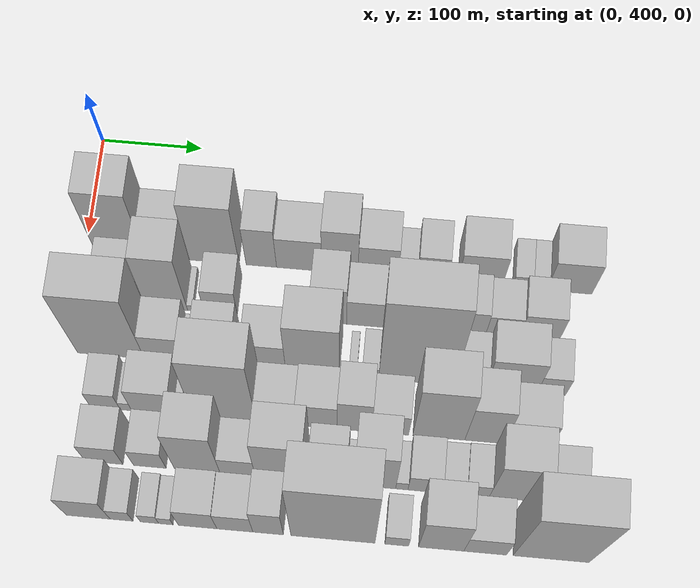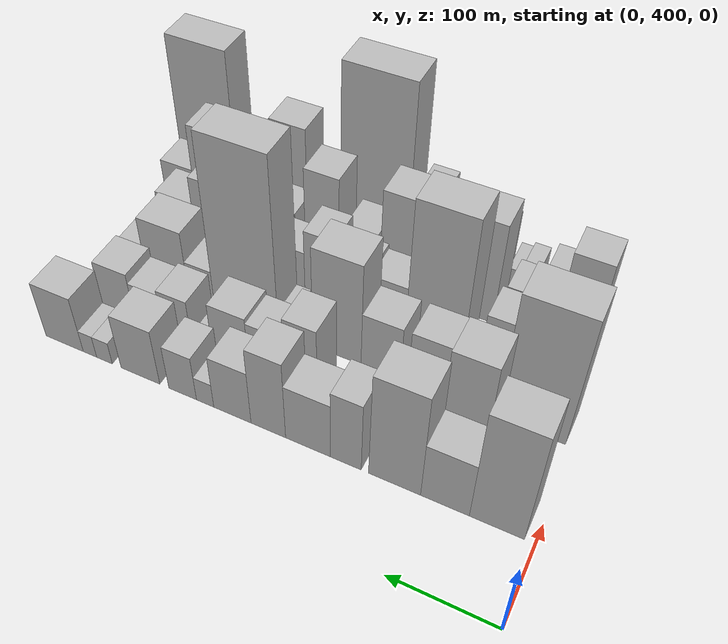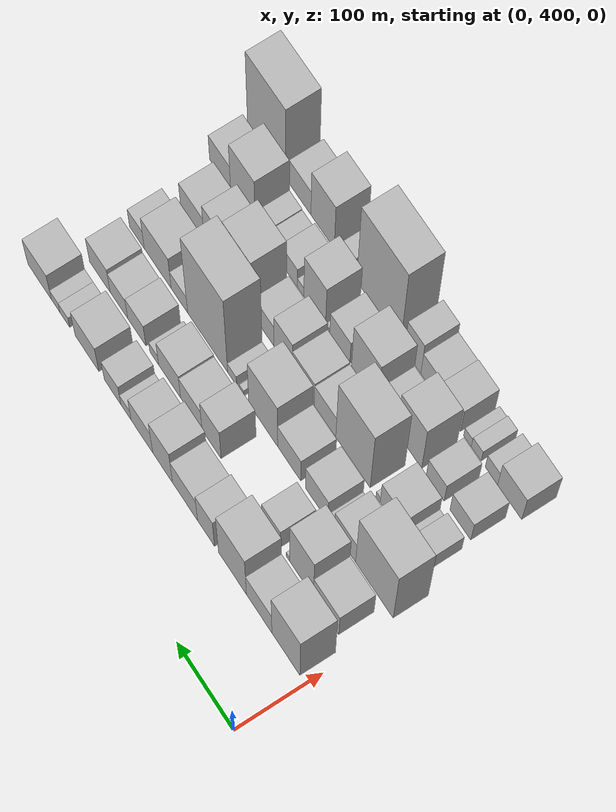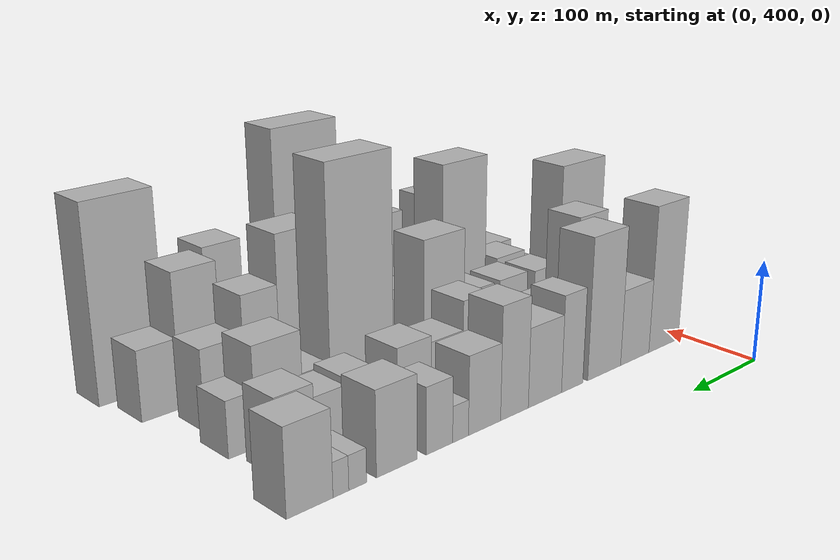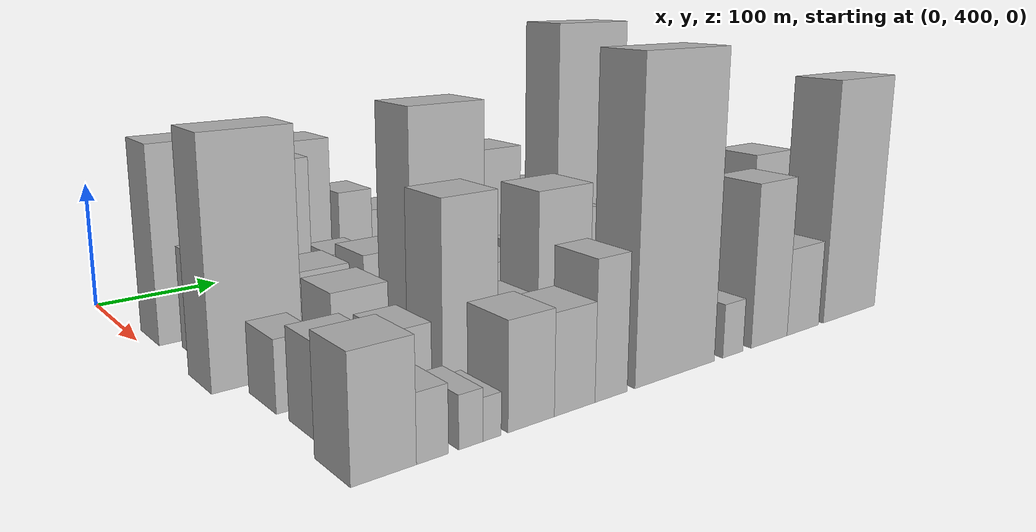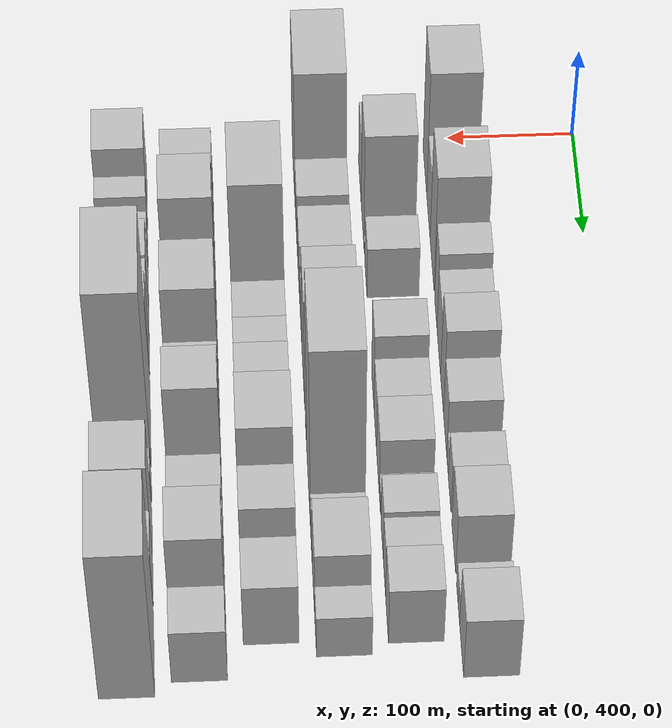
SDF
<sdf version="1.6">
 <world name="default">
  <model name="building_39">
   <static>1</static>
   <pose>100.0000 434.0452 0 0.000000 0.000000 0.000000</pose>
   <link name="link">
    <pose>0 0 73.50 0 0 0</pose>
    <collision name="collision"><geometry><box><size>40.0000 48.5534 147.0000</size></box></geometry></collision>
    <visual name="visual">
     <cast_shadows>0</cast_shadows>
     <geometry><box><size>40.0000 48.5534 147.0000</size></box></geometry>
     <material>
      <script>
       <uri>model://HANNAS_wall/materials/scripts</uri>
       <uri>model://HANNAS_wall/materials/textures</uri>
       <name>vrc/HANNAS_wall</name>
      </script>
     </material>
    </visual>
   </link>
  </model>
  <model name="building_40">
   <static>1</static>
   <pose>100.0000 480.4827 0 0.000000 0.000000 0.000000</pose>
   <link name="link">
    <pose>0 0 37.50 0 0 0</pose>
    <collision name="collision"><geometry><box><size>40.0000 44.3215 75.0000</size></box></geometry></collision>
    <visual name="visual">
     <cast_shadows>0</cast_shadows>
     <geometry><box><size>40.0000 44.3215 75.0000</size></box></geometry>
     <material>
      <script>
       <uri>model://HANNAS_wall/materials/scripts</uri>
       <uri>model://HANNAS_wall/materials/textures</uri>
       <name>vrc/HANNAS_wall</name>
      </script>
     </material>
    </visual>
   </link>
  </model>
  <model name="building_41">
   <static>1</static>
   <pose>100.0000 527.0960 0 0.000000 0.000000 0.000000</pose>
   <link name="link">
    <pose>0 0 69.00 0 0 0</pose>
    <collision name="collision"><geometry><box><size>40.0000 48.9052 138.0000</size></box></geometry></collision>
    <visual name="visual">
     <cast_shadows>0</cast_shadows>
     <geometry><box><size>40.0000 48.9052 138.0000</size></box></geometry>
     <material>
      <script>
       <uri>model://HANNAS_wall/materials/scripts</uri>
       <uri>model://HANNAS_wall/materials/textures</uri>
       <name>vrc/HANNAS_wall</name>
      </script>
     </material>
    </visual>
   </link>
  </model>
  <model name="building_42">
   <static>1</static>
   <pose>100.0000 573.4943 0 0.000000 0.000000 0.000000</pose>
   <link name="link">
    <pose>0 0 46.50 0 0 0</pose>
    <collision name="collision"><geometry><box><size>40.0000 29.8914 93.0000</size></box></geometry></collision>
    <visual name="visual">
     <cast_shadows>0</cast_shadows>
     <geometry><box><size>40.0000 29.8914 93.0000</size></box></geometry>
     <material>
      <script>
       <uri>model://HANNAS_wall/materials/scripts</uri>
       <uri>model://HANNAS_wall/materials/textures</uri>
       <name>vrc/HANNAS_wall</name>
      </script>
     </material>
    </visual>
   </link>
  </model>
  <model name="building_43">
   <static>1</static>
   <pose>100.0000 610.7016 0 0.000000 0.000000 0.000000</pose>
   <link name="link">
    <pose>0 0 37.50 0 0 0</pose>
    <collision name="collision"><geometry><box><size>40.0000 44.5233 75.0000</size></box></geometry></collision>
    <visual name="visual">
     <cast_shadows>0</cast_shadows>
     <geometry><box><size>40.0000 44.5233 75.0000</size></box></geometry>
     <material>
      <script>
       <uri>model://HANNAS_wall/materials/scripts</uri>
       <uri>model://HANNAS_wall/materials/textures</uri>
       <name>vrc/HANNAS_wall</name>
      </script>
     </material>
    </visual>
   </link>
  </model>
  <model name="building_44">
   <static>1</static>
   <pose>100.0000 650.6579 0 0.000000 0.000000 0.000000</pose>
   <link name="link">
    <pose>0 0 52.50 0 0 0</pose>
    <collision name="collision"><geometry><box><size>40.0000 35.3893 105.0000</size></box></geometry></collision>
    <visual name="visual">
     <cast_shadows>0</cast_shadows>
     <geometry><box><size>40.0000 35.3893 105.0000</size></box></geometry>
     <material>
      <script>
       <uri>model://HANNAS_wall/materials/scripts</uri>
       <uri>model://HANNAS_wall/materials/textures</uri>
       <name>vrc/HANNAS_wall</name>
      </script>
     </material>
    </visual>
   </link>
  </model>
  <model name="building_45">
   <static>1</static>
   <pose>100.0000 687.8683 0 0.000000 0.000000 0.000000</pose>
   <link name="link">
    <pose>0 0 36.00 0 0 0</pose>
    <collision name="collision"><geometry><box><size>40.0000 39.0315 72.0000</size></box></geometry></collision>
    <visual name="visual">
     <cast_shadows>0</cast_shadows>
     <geometry><box><size>40.0000 39.0315 72.0000</size></box></geometry>
     <material>
      <script>
       <uri>model://HANNAS_wall/materials/scripts</uri>
       <uri>model://HANNAS_wall/materials/textures</uri>
       <name>vrc/HANNAS_wall</name>
      </script>
     </material>
    </visual>
   </link>
  </model>
  <model name="building_46">
   <static>1</static>
   <pose>100.0000 716.6327 0 0.000000 0.000000 0.000000</pose>
   <link name="link">
    <pose>0 0 16.50 0 0 0</pose>
    <collision name="collision"><geometry><box><size>40.0000 18.4973 33.0000</size></box></geometry></collision>
    <visual name="visual">
     <cast_shadows>0</cast_shadows>
     <geometry><box><size>40.0000 18.4973 33.0000</size></box></geometry>
     <material>
      <script>
       <uri>model://HANNAS_wall/materials/scripts</uri>
       <uri>model://HANNAS_wall/materials/textures</uri>
       <name>vrc/HANNAS_wall</name>
      </script>
     </material>
    </visual>
   </link>
  </model>
  <model name="building_47">
   <static>1</static>
   <pose>100.0000 740.8823 0 0.000000 0.000000 0.000000</pose>
   <link name="link">
    <pose>0 0 30.00 0 0 0</pose>
    <collision name="collision"><geometry><box><size>40.0000 30.0018 60.0000</size></box></geometry></collision>
    <visual name="visual">
     <cast_shadows>0</cast_shadows>
     <geometry><box><size>40.0000 30.0018 60.0000</size></box></geometry>
     <material>
      <script>
       <uri>model://HANNAS_wall/materials/scripts</uri>
       <uri>model://HANNAS_wall/materials/textures</uri>
       <name>vrc/HANNAS_wall</name>
      </script>
     </material>
    </visual>
   </link>
  </model>
  <model name="building_48">
   <static>1</static>
   <pose>100.0000 787.5437 0 0.000000 0.000000 0.000000</pose>
   <link name="link">
    <pose>0 0 37.50 0 0 0</pose>
    <collision name="collision"><geometry><box><size>40.0000 43.3210 75.0000</size></box></geometry></collision>
    <visual name="visual">
     <cast_shadows>0</cast_shadows>
     <geometry><box><size>40.0000 43.3210 75.0000</size></box></geometry>
     <material>
      <script>
       <uri>model://HANNAS_wall/materials/scripts</uri>
       <uri>model://HANNAS_wall/materials/textures</uri>
       <name>vrc/HANNAS_wall</name>
      </script>
     </material>
    </visual>
   </link>
  </model>
  <model name="building_49">
   <static>1</static>
   <pose>100.0000 828.1777 0 0.000000 0.000000 0.000000</pose>
   <link name="link">
    <pose>0 0 15.00 0 0 0</pose>
    <collision name="collision"><geometry><box><size>40.0000 17.9471 30.0000</size></box></geometry></collision>
    <visual name="visual">
     <cast_shadows>0</cast_shadows>
     <geometry><box><size>40.0000 17.9471 30.0000</size></box></geometry>
     <material>
      <script>
       <uri>model://HANNAS_wall/materials/scripts</uri>
       <uri>model://HANNAS_wall/materials/textures</uri>
       <name>vrc/HANNAS_wall</name>
      </script>
     </material>
    </visual>
   </link>
  </model>
  <model name="building_50">
   <static>1</static>
   <pose>100.0000 844.9047 0 0.000000 0.000000 0.000000</pose>
   <link name="link">
    <pose>0 0 15.00 0 0 0</pose>
    <collision name="collision"><geometry><box><size>40.0000 15.5069 30.0000</size></box></geometry></collision>
    <visual name="visual">
     <cast_shadows>0</cast_shadows>
     <geometry><box><size>40.0000 15.5069 30.0000</size></box></geometry>
     <material>
      <script>
       <uri>model://HANNAS_wall/materials/scripts</uri>
       <uri>model://HANNAS_wall/materials/textures</uri>
       <name>vrc/HANNAS_wall</name>
      </script>
     </material>
    </visual>
   </link>
  </model>
  <model name="building_51">
   <static>1</static>
   <pose>100.0000 874.6239 0 0.000000 0.000000 0.000000</pose>
   <link name="link">
    <pose>0 0 37.50 0 0 0</pose>
    <collision name="collision"><geometry><box><size>40.0000 43.9314 75.0000</size></box></geometry></collision>
    <visual name="visual">
     <cast_shadows>0</cast_shadows>
     <geometry><box><size>40.0000 43.9314 75.0000</size></box></geometry>
     <material>
      <script>
       <uri>model://HANNAS_wall/materials/scripts</uri>
       <uri>model://HANNAS_wall/materials/textures</uri>
       <name>vrc/HANNAS_wall</name>
      </script>
     </material>
    </visual>
   </link>
  </model>
  <model name="building_87">
   <static>1</static>
   <pose>152.0000 444.2324 0 0.000000 0.000000 0.000000</pose>
   <link name="link">
    <pose>0 0 37.50 0 0 0</pose>
    <collision name="collision"><geometry><box><size>40.0000 43.6338 75.0000</size></box></geometry></collision>
    <visual name="visual">
     <cast_shadows>0</cast_shadows>
     <geometry><box><size>40.0000 43.6338 75.0000</size></box></geometry>
     <material>
      <script>
       <uri>model://HANNAS_wall/materials/scripts</uri>
       <uri>model://HANNAS_wall/materials/textures</uri>
       <name>vrc/HANNAS_wall</name>
      </script>
     </material>
    </visual>
   </link>
  </model>
  <model name="building_88">
   <static>1</static>
   <pose>152.0000 486.6848 0 0.000000 0.000000 0.000000</pose>
   <link name="link">
    <pose>0 0 67.50 0 0 0</pose>
    <collision name="collision"><geometry><box><size>40.0000 41.2710 135.0000</size></box></geometry></collision>
    <visual name="visual">
     <cast_shadows>0</cast_shadows>
     <geometry><box><size>40.0000 41.2710 135.0000</size></box></geometry>
     <material>
      <script>
       <uri>model://HANNAS_wall/materials/scripts</uri>
       <uri>model://HANNAS_wall/materials/textures</uri>
       <name>vrc/HANNAS_wall</name>
      </script>
     </material>
    </visual>
   </link>
  </model>
  <model name="building_89">
   <static>1</static>
   <pose>152.0000 510.3654 0 0.000000 0.000000 0.000000</pose>
   <link name="link">
    <pose>0 0 7.50 0 0 0</pose>
    <collision name="collision"><geometry><box><size>40.0000 6.0902 15.0000</size></box></geometry></collision>
    <visual name="visual">
     <cast_shadows>0</cast_shadows>
     <geometry><box><size>40.0000 6.0902 15.0000</size></box></geometry>
     <material>
      <script>
       <uri>model://HANNAS_wall/materials/scripts</uri>
       <uri>model://HANNAS_wall/materials/textures</uri>
       <name>vrc/HANNAS_wall</name>
      </script>
     </material>
    </visual>
   </link>
  </model>
  <model name="building_90">
   <static>1</static>
   <pose>152.0000 539.6230 0 0.000000 0.000000 0.000000</pose>
   <link name="link">
    <pose>0 0 30.00 0 0 0</pose>
    <collision name="collision"><geometry><box><size>40.0000 32.4252 60.0000</size></box></geometry></collision>
    <visual name="visual">
     <cast_shadows>0</cast_shadows>
     <geometry><box><size>40.0000 32.4252 60.0000</size></box></geometry>
     <material>
      <script>
       <uri>model://HANNAS_wall/materials/scripts</uri>
       <uri>model://HANNAS_wall/materials/textures</uri>
       <name>vrc/HANNAS_wall</name>
      </script>
     </material>
    </visual>
   </link>
  </model>
  <model name="building_91">
   <static>1</static>
   <pose>152.0000 644.8274 0 0.000000 0.000000 0.000000</pose>
   <link name="link">
    <pose>0 0 46.50 0 0 0</pose>
    <collision name="collision"><geometry><box><size>40.0000 33.9945 93.0000</size></box></geometry></collision>
    <visual name="visual">
     <cast_shadows>0</cast_shadows>
     <geometry><box><size>40.0000 33.9945 93.0000</size></box></geometry>
     <material>
      <script>
       <uri>model://HANNAS_wall/materials/scripts</uri>
       <uri>model://HANNAS_wall/materials/textures</uri>
       <name>vrc/HANNAS_wall</name>
      </script>
     </material>
    </visual>
   </link>
  </model>
  <model name="building_92">
   <static>1</static>
   <pose>152.0000 680.9987 0 0.000000 0.000000 0.000000</pose>
   <link name="link">
    <pose>0 0 33.00 0 0 0</pose>
    <collision name="collision"><geometry><box><size>40.0000 38.3481 66.0000</size></box></geometry></collision>
    <visual name="visual">
     <cast_shadows>0</cast_shadows>
     <geometry><box><size>40.0000 38.3481 66.0000</size></box></geometry>
     <material>
      <script>
       <uri>model://HANNAS_wall/materials/scripts</uri>
       <uri>model://HANNAS_wall/materials/textures</uri>
       <name>vrc/HANNAS_wall</name>
      </script>
     </material>
    </visual>
   </link>
  </model>
  <model name="building_93">
   <static>1</static>
   <pose>152.0000 719.9692 0 0.000000 0.000000 0.000000</pose>
   <link name="link">
    <pose>0 0 36.00 0 0 0</pose>
    <collision name="collision"><geometry><box><size>40.0000 39.5930 72.0000</size></box></geometry></collision>
    <visual name="visual">
     <cast_shadows>0</cast_shadows>
     <geometry><box><size>40.0000 39.5930 72.0000</size></box></geometry>
     <material>
      <script>
       <uri>model://HANNAS_wall/materials/scripts</uri>
       <uri>model://HANNAS_wall/materials/textures</uri>
       <name>vrc/HANNAS_wall</name>
      </script>
     </material>
    </visual>
   </link>
  </model>
  <model name="building_94">
   <static>1</static>
   <pose>152.0000 747.7922 0 0.000000 0.000000 0.000000</pose>
   <link name="link">
    <pose>0 0 15.00 0 0 0</pose>
    <collision name="collision"><geometry><box><size>40.0000 16.0530 30.0000</size></box></geometry></collision>
    <visual name="visual">
     <cast_shadows>0</cast_shadows>
     <geometry><box><size>40.0000 16.0530 30.0000</size></box></geometry>
     <material>
      <script>
       <uri>model://HANNAS_wall/materials/scripts</uri>
       <uri>model://HANNAS_wall/materials/textures</uri>
       <name>vrc/HANNAS_wall</name>
      </script>
     </material>
    </visual>
   </link>
  </model>
  <model name="building_95">
   <static>1</static>
   <pose>152.0000 779.2537 0 0.000000 0.000000 0.000000</pose>
   <link name="link">
    <pose>0 0 31.50 0 0 0</pose>
    <collision name="collision"><geometry><box><size>40.0000 32.8700 63.0000</size></box></geometry></collision>
    <visual name="visual">
     <cast_shadows>0</cast_shadows>
     <geometry><box><size>40.0000 32.8700 63.0000</size></box></geometry>
     <material>
      <script>
       <uri>model://HANNAS_wall/materials/scripts</uri>
       <uri>model://HANNAS_wall/materials/textures</uri>
       <name>vrc/HANNAS_wall</name>
      </script>
     </material>
    </visual>
   </link>
  </model>
  <model name="building_96">
   <static>1</static>
   <pose>152.0000 811.8018 0 0.000000 0.000000 0.000000</pose>
   <link name="link">
    <pose>0 0 28.50 0 0 0</pose>
    <collision name="collision"><geometry><box><size>40.0000 32.2261 57.0000</size></box></geometry></collision>
    <visual name="visual">
     <cast_shadows>0</cast_shadows>
     <geometry><box><size>40.0000 32.2261 57.0000</size></box></geometry>
     <material>
      <script>
       <uri>model://HANNAS_wall/materials/scripts</uri>
       <uri>model://HANNAS_wall/materials/textures</uri>
       <name>vrc/HANNAS_wall</name>
      </script>
     </material>
    </visual>
   </link>
  </model>
  <model name="building_97">
   <static>1</static>
   <pose>152.0000 846.9671 0 0.000000 0.000000 0.000000</pose>
   <link name="link">
    <pose>0 0 34.50 0 0 0</pose>
    <collision name="collision"><geometry><box><size>40.0000 38.1047 69.0000</size></box></geometry></collision>
    <visual name="visual">
     <cast_shadows>0</cast_shadows>
     <geometry><box><size>40.0000 38.1047 69.0000</size></box></geometry>
     <material>
      <script>
       <uri>model://HANNAS_wall/materials/scripts</uri>
       <uri>model://HANNAS_wall/materials/textures</uri>
       <name>vrc/HANNAS_wall</name>
      </script>
     </material>
    </visual>
   </link>
  </model>
  <model name="building_135">
   <static>1</static>
   <pose>204.0000 439.9268 0 0.000000 0.000000 0.000000</pose>
   <link name="link">
    <pose>0 0 84.00 0 0 0</pose>
    <collision name="collision"><geometry><box><size>40.0000 64.5803 168.0000</size></box></geometry></collision>
    <visual name="visual">
     <cast_shadows>0</cast_shadows>
     <geometry><box><size>40.0000 64.5803 168.0000</size></box></geometry>
     <material>
      <script>
       <uri>model://HANNAS_wall/materials/scripts</uri>
       <uri>model://HANNAS_wall/materials/textures</uri>
       <name>vrc/HANNAS_wall</name>
      </script>
     </material>
    </visual>
   </link>
  </model>
  <model name="building_136">
   <static>1</static>
   <pose>204.0000 490.7470 0 0.000000 0.000000 0.000000</pose>
   <link name="link">
    <pose>0 0 34.50 0 0 0</pose>
    <collision name="collision"><geometry><box><size>40.0000 37.0600 69.0000</size></box></geometry></collision>
    <visual name="visual">
     <cast_shadows>0</cast_shadows>
     <geometry><box><size>40.0000 37.0600 69.0000</size></box></geometry>
     <material>
      <script>
       <uri>model://HANNAS_wall/materials/scripts</uri>
       <uri>model://HANNAS_wall/materials/textures</uri>
       <name>vrc/HANNAS_wall</name>
      </script>
     </material>
    </visual>
   </link>
  </model>
  <model name="building_137">
   <static>1</static>
   <pose>204.0000 514.8238 0 0.000000 0.000000 0.000000</pose>
   <link name="link">
    <pose>0 0 13.50 0 0 0</pose>
    <collision name="collision"><geometry><box><size>40.0000 11.0937 27.0000</size></box></geometry></collision>
    <visual name="visual">
     <cast_shadows>0</cast_shadows>
     <geometry><box><size>40.0000 11.0937 27.0000</size></box></geometry>
     <material>
      <script>
       <uri>model://HANNAS_wall/materials/scripts</uri>
       <uri>model://HANNAS_wall/materials/textures</uri>
       <name>vrc/HANNAS_wall</name>
      </script>
     </material>
    </visual>
   </link>
  </model>
  <model name="building_138">
   <static>1</static>
   <pose>204.0000 539.9787 0 0.000000 0.000000 0.000000</pose>
   <link name="link">
    <pose>0 0 36.00 0 0 0</pose>
    <collision name="collision"><geometry><box><size>40.0000 39.2160 72.0000</size></box></geometry></collision>
    <visual name="visual">
     <cast_shadows>0</cast_shadows>
     <geometry><box><size>40.0000 39.2160 72.0000</size></box></geometry>
     <material>
      <script>
       <uri>model://HANNAS_wall/materials/scripts</uri>
       <uri>model://HANNAS_wall/materials/textures</uri>
       <name>vrc/HANNAS_wall</name>
      </script>
     </material>
    </visual>
   </link>
  </model>
  <model name="building_139">
   <static>1</static>
   <pose>204.0000 587.8857 0 0.000000 0.000000 0.000000</pose>
   <link name="link">
    <pose>0 0 36.00 0 0 0</pose>
    <collision name="collision"><geometry><box><size>40.0000 40.5982 72.0000</size></box></geometry></collision>
    <visual name="visual">
     <cast_shadows>0</cast_shadows>
     <geometry><box><size>40.0000 40.5982 72.0000</size></box></geometry>
     <material>
      <script>
       <uri>model://HANNAS_wall/materials/scripts</uri>
       <uri>model://HANNAS_wall/materials/textures</uri>
       <name>vrc/HANNAS_wall</name>
      </script>
     </material>
    </visual>
   </link>
  </model>
  <model name="building_140">
   <static>1</static>
   <pose>204.0000 633.7564 0 0.000000 0.000000 0.000000</pose>
   <link name="link">
    <pose>0 0 67.50 0 0 0</pose>
    <collision name="collision"><geometry><box><size>40.0000 51.1432 135.0000</size></box></geometry></collision>
    <visual name="visual">
     <cast_shadows>0</cast_shadows>
     <geometry><box><size>40.0000 51.1432 135.0000</size></box></geometry>
     <material>
      <script>
       <uri>model://HANNAS_wall/materials/scripts</uri>
       <uri>model://HANNAS_wall/materials/textures</uri>
       <name>vrc/HANNAS_wall</name>
      </script>
     </material>
    </visual>
   </link>
  </model>
  <model name="building_141">
   <static>1</static>
   <pose>204.0000 672.1844 0 0.000000 0.000000 0.000000</pose>
   <link name="link">
    <pose>0 0 9.00 0 0 0</pose>
    <collision name="collision"><geometry><box><size>40.0000 7.7126 18.0000</size></box></geometry></collision>
    <visual name="visual">
     <cast_shadows>0</cast_shadows>
     <geometry><box><size>40.0000 7.7126 18.0000</size></box></geometry>
     <material>
      <script>
       <uri>model://HANNAS_wall/materials/scripts</uri>
       <uri>model://HANNAS_wall/materials/textures</uri>
       <name>vrc/HANNAS_wall</name>
      </script>
     </material>
    </visual>
   </link>
  </model>
  <model name="building_142">
   <static>1</static>
   <pose>204.0000 689.0211 0 0.000000 0.000000 0.000000</pose>
   <link name="link">
    <pose>0 0 15.00 0 0 0</pose>
    <collision name="collision"><geometry><box><size>40.0000 15.9609 30.0000</size></box></geometry></collision>
    <visual name="visual">
     <cast_shadows>0</cast_shadows>
     <geometry><box><size>40.0000 15.9609 30.0000</size></box></geometry>
     <material>
      <script>
       <uri>model://HANNAS_wall/materials/scripts</uri>
       <uri>model://HANNAS_wall/materials/textures</uri>
       <name>vrc/HANNAS_wall</name>
      </script>
     </material>
    </visual>
   </link>
  </model>
  <model name="building_143">
   <static>1</static>
   <pose>204.0000 733.0021 0 0.000000 0.000000 0.000000</pose>
   <link name="link">
    <pose>0 0 112.50 0 0 0</pose>
    <collision name="collision"><geometry><box><size>40.0000 72.0011 225.0000</size></box></geometry></collision>
    <visual name="visual">
     <cast_shadows>0</cast_shadows>
     <geometry><box><size>40.0000 72.0011 225.0000</size></box></geometry>
     <material>
      <script>
       <uri>model://HANNAS_wall/materials/scripts</uri>
       <uri>model://HANNAS_wall/materials/textures</uri>
       <name>vrc/HANNAS_wall</name>
      </script>
     </material>
    </visual>
   </link>
  </model>
  <model name="building_144">
   <static>1</static>
   <pose>204.0000 783.9326 0 0.000000 0.000000 0.000000</pose>
   <link name="link">
    <pose>0 0 25.50 0 0 0</pose>
    <collision name="collision"><geometry><box><size>40.0000 29.8598 51.0000</size></box></geometry></collision>
    <visual name="visual">
     <cast_shadows>0</cast_shadows>
     <geometry><box><size>40.0000 29.8598 51.0000</size></box></geometry>
     <material>
      <script>
       <uri>model://HANNAS_wall/materials/scripts</uri>
       <uri>model://HANNAS_wall/materials/textures</uri>
       <name>vrc/HANNAS_wall</name>
      </script>
     </material>
    </visual>
   </link>
  </model>
  <model name="building_145">
   <static>1</static>
   <pose>204.0000 823.3946 0 0.000000 0.000000 0.000000</pose>
   <link name="link">
    <pose>0 0 45.00 0 0 0</pose>
    <collision name="collision"><geometry><box><size>40.0000 49.0642 90.0000</size></box></geometry></collision>
    <visual name="visual">
     <cast_shadows>0</cast_shadows>
     <geometry><box><size>40.0000 49.0642 90.0000</size></box></geometry>
     <material>
      <script>
       <uri>model://HANNAS_wall/materials/scripts</uri>
       <uri>model://HANNAS_wall/materials/textures</uri>
       <name>vrc/HANNAS_wall</name>
      </script>
     </material>
    </visual>
   </link>
  </model>
  <model name="building_146">
   <static>1</static>
   <pose>204.0000 861.4885 0 0.000000 0.000000 0.000000</pose>
   <link name="link">
    <pose>0 0 25.50 0 0 0</pose>
    <collision name="collision"><geometry><box><size>40.0000 27.1237 51.0000</size></box></geometry></collision>
    <visual name="visual">
     <cast_shadows>0</cast_shadows>
     <geometry><box><size>40.0000 27.1237 51.0000</size></box></geometry>
     <material>
      <script>
       <uri>model://HANNAS_wall/materials/scripts</uri>
       <uri>model://HANNAS_wall/materials/textures</uri>
       <name>vrc/HANNAS_wall</name>
      </script>
     </material>
    </visual>
   </link>
  </model>
  <model name="building_184">
   <static>1</static>
   <pose>256.0000 441.8845 0 0.000000 0.000000 0.000000</pose>
   <link name="link">
    <pose>0 0 24.00 0 0 0</pose>
    <collision name="collision"><geometry><box><size>40.0000 28.2651 48.0000</size></box></geometry></collision>
    <visual name="visual">
     <cast_shadows>0</cast_shadows>
     <geometry><box><size>40.0000 28.2651 48.0000</size></box></geometry>
     <material>
      <script>
       <uri>model://HANNAS_wall/materials/scripts</uri>
       <uri>model://HANNAS_wall/materials/textures</uri>
       <name>vrc/HANNAS_wall</name>
      </script>
     </material>
    </visual>
   </link>
  </model>
  <model name="building_185">
   <static>1</static>
   <pose>256.0000 461.4958 0 0.000000 0.000000 0.000000</pose>
   <link name="link">
    <pose>0 0 12.00 0 0 0</pose>
    <collision name="collision"><geometry><box><size>40.0000 10.9574 24.0000</size></box></geometry></collision>
    <visual name="visual">
     <cast_shadows>0</cast_shadows>
     <geometry><box><size>40.0000 10.9574 24.0000</size></box></geometry>
     <material>
      <script>
       <uri>model://HANNAS_wall/materials/scripts</uri>
       <uri>model://HANNAS_wall/materials/textures</uri>
       <name>vrc/HANNAS_wall</name>
      </script>
     </material>
    </visual>
   </link>
  </model>
  <model name="building_186">
   <static>1</static>
   <pose>256.0000 487.6383 0 0.000000 0.000000 0.000000</pose>
   <link name="link">
    <pose>0 0 34.50 0 0 0</pose>
    <collision name="collision"><geometry><box><size>40.0000 41.3276 69.0000</size></box></geometry></collision>
    <visual name="visual">
     <cast_shadows>0</cast_shadows>
     <geometry><box><size>40.0000 41.3276 69.0000</size></box></geometry>
     <material>
      <script>
       <uri>model://HANNAS_wall/materials/scripts</uri>
       <uri>model://HANNAS_wall/materials/textures</uri>
       <name>vrc/HANNAS_wall</name>
      </script>
     </material>
    </visual>
   </link>
  </model>
  <model name="building_187">
   <static>1</static>
   <pose>256.0000 511.9182 0 0.000000 0.000000 0.000000</pose>
   <link name="link">
    <pose>0 0 9.00 0 0 0</pose>
    <collision name="collision"><geometry><box><size>40.0000 7.2322 18.0000</size></box></geometry></collision>
    <visual name="visual">
     <cast_shadows>0</cast_shadows>
     <geometry><box><size>40.0000 7.2322 18.0000</size></box></geometry>
     <material>
      <script>
       <uri>model://HANNAS_wall/materials/scripts</uri>
       <uri>model://HANNAS_wall/materials/textures</uri>
       <name>vrc/HANNAS_wall</name>
      </script>
     </material>
    </visual>
   </link>
  </model>
  <model name="building_188">
   <static>1</static>
   <pose>256.0000 555.5426 0 0.000000 0.000000 0.000000</pose>
   <link name="link">
    <pose>0 0 90.00 0 0 0</pose>
    <collision name="collision"><geometry><box><size>40.0000 60.0166 180.0000</size></box></geometry></collision>
    <visual name="visual">
     <cast_shadows>0</cast_shadows>
     <geometry><box><size>40.0000 60.0166 180.0000</size></box></geometry>
     <material>
      <script>
       <uri>model://HANNAS_wall/materials/scripts</uri>
       <uri>model://HANNAS_wall/materials/textures</uri>
       <name>vrc/HANNAS_wall</name>
      </script>
     </material>
    </visual>
   </link>
  </model>
  <model name="building_189">
   <static>1</static>
   <pose>256.0000 604.4857 0 0.000000 0.000000 0.000000</pose>
   <link name="link">
    <pose>0 0 33.00 0 0 0</pose>
    <collision name="collision"><geometry><box><size>40.0000 37.8696 66.0000</size></box></geometry></collision>
    <visual name="visual">
     <cast_shadows>0</cast_shadows>
     <geometry><box><size>40.0000 37.8696 66.0000</size></box></geometry>
     <material>
      <script>
       <uri>model://HANNAS_wall/materials/scripts</uri>
       <uri>model://HANNAS_wall/materials/textures</uri>
       <name>vrc/HANNAS_wall</name>
      </script>
     </material>
    </visual>
   </link>
  </model>
  <model name="building_190">
   <static>1</static>
   <pose>256.0000 642.7297 0 0.000000 0.000000 0.000000</pose>
   <link name="link">
    <pose>0 0 36.00 0 0 0</pose>
    <collision name="collision"><geometry><box><size>40.0000 38.6183 72.0000</size></box></geometry></collision>
    <visual name="visual">
     <cast_shadows>0</cast_shadows>
     <geometry><box><size>40.0000 38.6183 72.0000</size></box></geometry>
     <material>
      <script>
       <uri>model://HANNAS_wall/materials/scripts</uri>
       <uri>model://HANNAS_wall/materials/textures</uri>
       <name>vrc/HANNAS_wall</name>
      </script>
     </material>
    </visual>
   </link>
  </model>
  <model name="building_191">
   <static>1</static>
   <pose>256.0000 678.4020 0 0.000000 0.000000 0.000000</pose>
   <link name="link">
    <pose>0 0 46.50 0 0 0</pose>
    <collision name="collision"><geometry><box><size>40.0000 32.7264 93.0000</size></box></geometry></collision>
    <visual name="visual">
     <cast_shadows>0</cast_shadows>
     <geometry><box><size>40.0000 32.7264 93.0000</size></box></geometry>
     <material>
      <script>
       <uri>model://HANNAS_wall/materials/scripts</uri>
       <uri>model://HANNAS_wall/materials/textures</uri>
       <name>vrc/HANNAS_wall</name>
      </script>
     </material>
    </visual>
   </link>
  </model>
  <model name="building_192">
   <static>1</static>
   <pose>256.0000 712.1624 0 0.000000 0.000000 0.000000</pose>
   <link name="link">
    <pose>0 0 31.50 0 0 0</pose>
    <collision name="collision"><geometry><box><size>40.0000 34.7942 63.0000</size></box></geometry></collision>
    <visual name="visual">
     <cast_shadows>0</cast_shadows>
     <geometry><box><size>40.0000 34.7942 63.0000</size></box></geometry>
     <material>
      <script>
       <uri>model://HANNAS_wall/materials/scripts</uri>
       <uri>model://HANNAS_wall/materials/textures</uri>
       <name>vrc/HANNAS_wall</name>
      </script>
     </material>
    </visual>
   </link>
  </model>
  <model name="building_193">
   <static>1</static>
   <pose>256.0000 758.0184 0 0.000000 0.000000 0.000000</pose>
   <link name="link">
    <pose>0 0 78.00 0 0 0</pose>
    <collision name="collision"><geometry><box><size>40.0000 48.9179 156.0000</size></box></geometry></collision>
    <visual name="visual">
     <cast_shadows>0</cast_shadows>
     <geometry><box><size>40.0000 48.9179 156.0000</size></box></geometry>
     <material>
      <script>
       <uri>model://HANNAS_wall/materials/scripts</uri>
       <uri>model://HANNAS_wall/materials/textures</uri>
       <name>vrc/HANNAS_wall</name>
      </script>
     </material>
    </visual>
   </link>
  </model>
  <model name="building_194">
   <static>1</static>
   <pose>256.0000 801.2196 0 0.000000 0.000000 0.000000</pose>
   <link name="link">
    <pose>0 0 55.50 0 0 0</pose>
    <collision name="collision"><geometry><box><size>40.0000 37.4844 111.0000</size></box></geometry></collision>
    <visual name="visual">
     <cast_shadows>0</cast_shadows>
     <geometry><box><size>40.0000 37.4844 111.0000</size></box></geometry>
     <material>
      <script>
       <uri>model://HANNAS_wall/materials/scripts</uri>
       <uri>model://HANNAS_wall/materials/textures</uri>
       <name>vrc/HANNAS_wall</name>
      </script>
     </material>
    </visual>
   </link>
  </model>
  <model name="building_195">
   <static>1</static>
   <pose>256.0000 841.3768 0 0.000000 0.000000 0.000000</pose>
   <link name="link">
    <pose>0 0 37.50 0 0 0</pose>
    <collision name="collision"><geometry><box><size>40.0000 42.8300 75.0000</size></box></geometry></collision>
    <visual name="visual">
     <cast_shadows>0</cast_shadows>
     <geometry><box><size>40.0000 42.8300 75.0000</size></box></geometry>
     <material>
      <script>
       <uri>model://HANNAS_wall/materials/scripts</uri>
       <uri>model://HANNAS_wall/materials/textures</uri>
       <name>vrc/HANNAS_wall</name>
      </script>
     </material>
    </visual>
   </link>
  </model>
  <model name="building_231">
   <static>1</static>
   <pose>308.0000 448.1430 0 0.000000 0.000000 0.000000</pose>
   <link name="link">
    <pose>0 0 30.00 0 0 0</pose>
    <collision name="collision"><geometry><box><size>40.0000 35.5836 60.0000</size></box></geometry></collision>
    <visual name="visual">
     <cast_shadows>0</cast_shadows>
     <geometry><box><size>40.0000 35.5836 60.0000</size></box></geometry>
     <material>
      <script>
       <uri>model://HANNAS_wall/materials/scripts</uri>
       <uri>model://HANNAS_wall/materials/textures</uri>
       <name>vrc/HANNAS_wall</name>
      </script>
     </material>
    </visual>
   </link>
  </model>
  <model name="building_232">
   <static>1</static>
   <pose>308.0000 491.2256 0 0.000000 0.000000 0.000000</pose>
   <link name="link">
    <pose>0 0 28.50 0 0 0</pose>
    <collision name="collision"><geometry><box><size>40.0000 30.5816 57.0000</size></box></geometry></collision>
    <visual name="visual">
     <cast_shadows>0</cast_shadows>
     <geometry><box><size>40.0000 30.5816 57.0000</size></box></geometry>
     <material>
      <script>
       <uri>model://HANNAS_wall/materials/scripts</uri>
       <uri>model://HANNAS_wall/materials/textures</uri>
       <name>vrc/HANNAS_wall</name>
      </script>
     </material>
    </visual>
   </link>
  </model>
  <model name="building_233">
   <static>1</static>
   <pose>308.0000 535.8438 0 0.000000 0.000000 0.000000</pose>
   <link name="link">
    <pose>0 0 66.00 0 0 0</pose>
    <collision name="collision"><geometry><box><size>40.0000 42.6547 132.0000</size></box></geometry></collision>
    <visual name="visual">
     <cast_shadows>0</cast_shadows>
     <geometry><box><size>40.0000 42.6547 132.0000</size></box></geometry>
     <material>
      <script>
       <uri>model://HANNAS_wall/materials/scripts</uri>
       <uri>model://HANNAS_wall/materials/textures</uri>
       <name>vrc/HANNAS_wall</name>
      </script>
     </material>
    </visual>
   </link>
  </model>
  <model name="building_234">
   <static>1</static>
   <pose>308.0000 573.7904 0 0.000000 0.000000 0.000000</pose>
   <link name="link">
    <pose>0 0 28.50 0 0 0</pose>
    <collision name="collision"><geometry><box><size>40.0000 33.2385 57.0000</size></box></geometry></collision>
    <visual name="visual">
     <cast_shadows>0</cast_shadows>
     <geometry><box><size>40.0000 33.2385 57.0000</size></box></geometry>
     <material>
      <script>
       <uri>model://HANNAS_wall/materials/scripts</uri>
       <uri>model://HANNAS_wall/materials/textures</uri>
       <name>vrc/HANNAS_wall</name>
      </script>
     </material>
    </visual>
   </link>
  </model>
  <model name="building_235">
   <static>1</static>
   <pose>308.0000 613.6829 0 0.000000 0.000000 0.000000</pose>
   <link name="link">
    <pose>0 0 63.00 0 0 0</pose>
    <collision name="collision"><geometry><box><size>40.0000 46.5466 126.0000</size></box></geometry></collision>
    <visual name="visual">
     <cast_shadows>0</cast_shadows>
     <geometry><box><size>40.0000 46.5466 126.0000</size></box></geometry>
     <material>
      <script>
       <uri>model://HANNAS_wall/materials/scripts</uri>
       <uri>model://HANNAS_wall/materials/textures</uri>
       <name>vrc/HANNAS_wall</name>
      </script>
     </material>
    </visual>
   </link>
  </model>
  <model name="building_236">
   <static>1</static>
   <pose>308.0000 657.6672 0 0.000000 0.000000 0.000000</pose>
   <link name="link">
    <pose>0 0 33.00 0 0 0</pose>
    <collision name="collision"><geometry><box><size>40.0000 35.4218 66.0000</size></box></geometry></collision>
    <visual name="visual">
     <cast_shadows>0</cast_shadows>
     <geometry><box><size>40.0000 35.4218 66.0000</size></box></geometry>
     <material>
      <script>
       <uri>model://HANNAS_wall/materials/scripts</uri>
       <uri>model://HANNAS_wall/materials/textures</uri>
       <name>vrc/HANNAS_wall</name>
      </script>
     </material>
    </visual>
   </link>
  </model>
  <model name="building_237">
   <static>1</static>
   <pose>308.0000 679.1170 0 0.000000 0.000000 0.000000</pose>
   <link name="link">
    <pose>0 0 7.50 0 0 0</pose>
    <collision name="collision"><geometry><box><size>40.0000 7.4778 15.0000</size></box></geometry></collision>
    <visual name="visual">
     <cast_shadows>0</cast_shadows>
     <geometry><box><size>40.0000 7.4778 15.0000</size></box></geometry>
     <material>
      <script>
       <uri>model://HANNAS_wall/materials/scripts</uri>
       <uri>model://HANNAS_wall/materials/textures</uri>
       <name>vrc/HANNAS_wall</name>
      </script>
     </material>
    </visual>
   </link>
  </model>
  <model name="building_238">
   <static>1</static>
   <pose>308.0000 702.0874 0 0.000000 0.000000 0.000000</pose>
   <link name="link">
    <pose>0 0 60.00 0 0 0</pose>
    <collision name="collision"><geometry><box><size>40.0000 38.4632 120.0000</size></box></geometry></collision>
    <visual name="visual">
     <cast_shadows>0</cast_shadows>
     <geometry><box><size>40.0000 38.4632 120.0000</size></box></geometry>
     <material>
      <script>
       <uri>model://HANNAS_wall/materials/scripts</uri>
       <uri>model://HANNAS_wall/materials/textures</uri>
       <name>vrc/HANNAS_wall</name>
      </script>
     </material>
    </visual>
   </link>
  </model>
  <model name="building_239">
   <static>1</static>
   <pose>308.0000 727.0311 0 0.000000 0.000000 0.000000</pose>
   <link name="link">
    <pose>0 0 13.50 0 0 0</pose>
    <collision name="collision"><geometry><box><size>40.0000 11.4241 27.0000</size></box></geometry></collision>
    <visual name="visual">
     <cast_shadows>0</cast_shadows>
     <geometry><box><size>40.0000 11.4241 27.0000</size></box></geometry>
     <material>
      <script>
       <uri>model://HANNAS_wall/materials/scripts</uri>
       <uri>model://HANNAS_wall/materials/textures</uri>
       <name>vrc/HANNAS_wall</name>
      </script>
     </material>
    </visual>
   </link>
  </model>
  <model name="building_240">
   <static>1</static>
   <pose>308.0000 748.0153 0 0.000000 0.000000 0.000000</pose>
   <link name="link">
    <pose>0 0 27.00 0 0 0</pose>
    <collision name="collision"><geometry><box><size>40.0000 30.5442 54.0000</size></box></geometry></collision>
    <visual name="visual">
     <cast_shadows>0</cast_shadows>
     <geometry><box><size>40.0000 30.5442 54.0000</size></box></geometry>
     <material>
      <script>
       <uri>model://HANNAS_wall/materials/scripts</uri>
       <uri>model://HANNAS_wall/materials/textures</uri>
       <name>vrc/HANNAS_wall</name>
      </script>
     </material>
    </visual>
   </link>
  </model>
  <model name="building_241">
   <static>1</static>
   <pose>308.0000 774.4127 0 0.000000 0.000000 0.000000</pose>
   <link name="link">
    <pose>0 0 19.50 0 0 0</pose>
    <collision name="collision"><geometry><box><size>40.0000 22.2507 39.0000</size></box></geometry></collision>
    <visual name="visual">
     <cast_shadows>0</cast_shadows>
     <geometry><box><size>40.0000 22.2507 39.0000</size></box></geometry>
     <material>
      <script>
       <uri>model://HANNAS_wall/materials/scripts</uri>
       <uri>model://HANNAS_wall/materials/textures</uri>
       <name>vrc/HANNAS_wall</name>
      </script>
     </material>
    </visual>
   </link>
  </model>
  <model name="building_242">
   <static>1</static>
   <pose>308.0000 796.9359 0 0.000000 0.000000 0.000000</pose>
   <link name="link">
    <pose>0 0 21.00 0 0 0</pose>
    <collision name="collision"><geometry><box><size>40.0000 22.7957 42.0000</size></box></geometry></collision>
    <visual name="visual">
     <cast_shadows>0</cast_shadows>
     <geometry><box><size>40.0000 22.7957 42.0000</size></box></geometry>
     <material>
      <script>
       <uri>model://HANNAS_wall/materials/scripts</uri>
       <uri>model://HANNAS_wall/materials/textures</uri>
       <name>vrc/HANNAS_wall</name>
      </script>
     </material>
    </visual>
   </link>
  </model>
  <model name="building_243">
   <static>1</static>
   <pose>308.0000 830.7592 0 0.000000 0.000000 0.000000</pose>
   <link name="link">
    <pose>0 0 63.00 0 0 0</pose>
    <collision name="collision"><geometry><box><size>40.0000 44.8509 126.0000</size></box></geometry></collision>
    <visual name="visual">
     <cast_shadows>0</cast_shadows>
     <geometry><box><size>40.0000 44.8509 126.0000</size></box></geometry>
     <material>
      <script>
       <uri>model://HANNAS_wall/materials/scripts</uri>
       <uri>model://HANNAS_wall/materials/textures</uri>
       <name>vrc/HANNAS_wall</name>
      </script>
     </material>
    </visual>
   </link>
  </model>
  <model name="building_244">
   <static>1</static>
   <pose>308.0000 872.3679 0 0.000000 0.000000 0.000000</pose>
   <link name="link">
    <pose>0 0 33.00 0 0 0</pose>
    <collision name="collision"><geometry><box><size>40.0000 38.3664 66.0000</size></box></geometry></collision>
    <visual name="visual">
     <cast_shadows>0</cast_shadows>
     <geometry><box><size>40.0000 38.3664 66.0000</size></box></geometry>
     <material>
      <script>
       <uri>model://HANNAS_wall/materials/scripts</uri>
       <uri>model://HANNAS_wall/materials/textures</uri>
       <name>vrc/HANNAS_wall</name>
      </script>
     </material>
    </visual>
   </link>
  </model>
  <model name="building_283">
   <static>1</static>
   <pose>360.0000 440.8335 0 0.000000 0.000000 0.000000</pose>
   <link name="link">
    <pose>0 0 37.50 0 0 0</pose>
    <collision name="collision"><geometry><box><size>40.0000 40.8661 75.0000</size></box></geometry></collision>
    <visual name="visual">
     <cast_shadows>0</cast_shadows>
     <geometry><box><size>40.0000 40.8661 75.0000</size></box></geometry>
     <material>
      <script>
       <uri>model://HANNAS_wall/materials/scripts</uri>
       <uri>model://HANNAS_wall/materials/textures</uri>
       <name>vrc/HANNAS_wall</name>
      </script>
     </material>
    </visual>
   </link>
  </model>
  <model name="building_284">
   <static>1</static>
   <pose>360.0000 471.8581 0 0.000000 0.000000 0.000000</pose>
   <link name="link">
    <pose>0 0 21.00 0 0 0</pose>
    <collision name="collision"><geometry><box><size>40.0000 21.1829 42.0000</size></box></geometry></collision>
    <visual name="visual">
     <cast_shadows>0</cast_shadows>
     <geometry><box><size>40.0000 21.1829 42.0000</size></box></geometry>
     <material>
      <script>
       <uri>model://HANNAS_wall/materials/scripts</uri>
       <uri>model://HANNAS_wall/materials/textures</uri>
       <name>vrc/HANNAS_wall</name>
      </script>
     </material>
    </visual>
   </link>
  </model>
  <model name="building_285">
   <static>1</static>
   <pose>360.0000 497.9468 0 0.000000 0.000000 0.000000</pose>
   <link name="link">
    <pose>0 0 16.50 0 0 0</pose>
    <collision name="collision"><geometry><box><size>40.0000 16.9945 33.0000</size></box></geometry></collision>
    <visual name="visual">
     <cast_shadows>0</cast_shadows>
     <geometry><box><size>40.0000 16.9945 33.0000</size></box></geometry>
     <material>
      <script>
       <uri>model://HANNAS_wall/materials/scripts</uri>
       <uri>model://HANNAS_wall/materials/textures</uri>
       <name>vrc/HANNAS_wall</name>
      </script>
     </material>
    </visual>
   </link>
  </model>
  <model name="building_286">
   <static>1</static>
   <pose>360.0000 513.0447 0 0.000000 0.000000 0.000000</pose>
   <link name="link">
    <pose>0 0 13.50 0 0 0</pose>
    <collision name="collision"><geometry><box><size>40.0000 13.2012 27.0000</size></box></geometry></collision>
    <visual name="visual">
     <cast_shadows>0</cast_shadows>
     <geometry><box><size>40.0000 13.2012 27.0000</size></box></geometry>
     <material>
      <script>
       <uri>model://HANNAS_wall/materials/scripts</uri>
       <uri>model://HANNAS_wall/materials/textures</uri>
       <name>vrc/HANNAS_wall</name>
      </script>
     </material>
    </visual>
   </link>
  </model>
  <model name="building_287">
   <static>1</static>
   <pose>360.0000 542.4685 0 0.000000 0.000000 0.000000</pose>
   <link name="link">
    <pose>0 0 34.50 0 0 0</pose>
    <collision name="collision"><geometry><box><size>40.0000 35.6465 69.0000</size></box></geometry></collision>
    <visual name="visual">
     <cast_shadows>0</cast_shadows>
     <geometry><box><size>40.0000 35.6465 69.0000</size></box></geometry>
     <material>
      <script>
       <uri>model://HANNAS_wall/materials/scripts</uri>
       <uri>model://HANNAS_wall/materials/textures</uri>
       <name>vrc/HANNAS_wall</name>
      </script>
     </material>
    </visual>
   </link>
  </model>
  <model name="building_288">
   <static>1</static>
   <pose>360.0000 577.0071 0 0.000000 0.000000 0.000000</pose>
   <link name="link">
    <pose>0 0 33.00 0 0 0</pose>
    <collision name="collision"><geometry><box><size>40.0000 33.4307 66.0000</size></box></geometry></collision>
    <visual name="visual">
     <cast_shadows>0</cast_shadows>
     <geometry><box><size>40.0000 33.4307 66.0000</size></box></geometry>
     <material>
      <script>
       <uri>model://HANNAS_wall/materials/scripts</uri>
       <uri>model://HANNAS_wall/materials/textures</uri>
       <name>vrc/HANNAS_wall</name>
      </script>
     </material>
    </visual>
   </link>
  </model>
  <model name="building_289">
   <static>1</static>
   <pose>360.0000 607.8117 0 0.000000 0.000000 0.000000</pose>
   <link name="link">
    <pose>0 0 46.50 0 0 0</pose>
    <collision name="collision"><geometry><box><size>40.0000 28.1784 93.0000</size></box></geometry></collision>
    <visual name="visual">
     <cast_shadows>0</cast_shadows>
     <geometry><box><size>40.0000 28.1784 93.0000</size></box></geometry>
     <material>
      <script>
       <uri>model://HANNAS_wall/materials/scripts</uri>
       <uri>model://HANNAS_wall/materials/textures</uri>
       <name>vrc/HANNAS_wall</name>
      </script>
     </material>
    </visual>
   </link>
  </model>
  <model name="building_290">
   <static>1</static>
   <pose>360.0000 667.6455 0 0.000000 0.000000 0.000000</pose>
   <link name="link">
    <pose>0 0 108.00 0 0 0</pose>
    <collision name="collision"><geometry><box><size>40.0000 77.4891 216.0000</size></box></geometry></collision>
    <visual name="visual">
     <cast_shadows>0</cast_shadows>
     <geometry><box><size>40.0000 77.4891 216.0000</size></box></geometry>
     <material>
      <script>
       <uri>model://HANNAS_wall/materials/scripts</uri>
       <uri>model://HANNAS_wall/materials/textures</uri>
       <name>vrc/HANNAS_wall</name>
      </script>
     </material>
    </visual>
   </link>
  </model>
  <model name="building_291">
   <static>1</static>
   <pose>360.0000 726.3908 0 0.000000 0.000000 0.000000</pose>
   <link name="link">
    <pose>0 0 19.50 0 0 0</pose>
    <collision name="collision"><geometry><box><size>40.0000 22.0015 39.0000</size></box></geometry></collision>
    <visual name="visual">
     <cast_shadows>0</cast_shadows>
     <geometry><box><size>40.0000 22.0015 39.0000</size></box></geometry>
     <material>
      <script>
       <uri>model://HANNAS_wall/materials/scripts</uri>
       <uri>model://HANNAS_wall/materials/textures</uri>
       <name>vrc/HANNAS_wall</name>
      </script>
     </material>
    </visual>
   </link>
  </model>
  <model name="building_292">
   <static>1</static>
   <pose>360.0000 767.2490 0 0.000000 0.000000 0.000000</pose>
   <link name="link">
    <pose>0 0 60.00 0 0 0</pose>
    <collision name="collision"><geometry><box><size>40.0000 41.7150 120.0000</size></box></geometry></collision>
    <visual name="visual">
     <cast_shadows>0</cast_shadows>
     <geometry><box><size>40.0000 41.7150 120.0000</size></box></geometry>
     <material>
      <script>
       <uri>model://HANNAS_wall/materials/scripts</uri>
       <uri>model://HANNAS_wall/materials/textures</uri>
       <name>vrc/HANNAS_wall</name>
      </script>
     </material>
    </visual>
   </link>
  </model>
  <model name="building_293">
   <static>1</static>
   <pose>360.0000 807.6888 0 0.000000 0.000000 0.000000</pose>
   <link name="link">
    <pose>0 0 33.00 0 0 0</pose>
    <collision name="collision"><geometry><box><size>40.0000 39.1646 66.0000</size></box></geometry></collision>
    <visual name="visual">
     <cast_shadows>0</cast_shadows>
     <geometry><box><size>40.0000 39.1646 66.0000</size></box></geometry>
     <material>
      <script>
       <uri>model://HANNAS_wall/materials/scripts</uri>
       <uri>model://HANNAS_wall/materials/textures</uri>
       <name>vrc/HANNAS_wall</name>
      </script>
     </material>
    </visual>
   </link>
  </model>
  <model name="building_294">
   <static>1</static>
   <pose>360.0000 868.1029 0 0.000000 0.000000 0.000000</pose>
   <link name="link">
    <pose>0 0 93.00 0 0 0</pose>
    <collision name="collision"><geometry><box><size>40.0000 69.6637 186.0000</size></box></geometry></collision>
    <visual name="visual">
     <cast_shadows>0</cast_shadows>
     <geometry><box><size>40.0000 69.6637 186.0000</size></box></geometry>
     <material>
      <script>
       <uri>model://HANNAS_wall/materials/scripts</uri>
       <uri>model://HANNAS_wall/materials/textures</uri>
       <name>vrc/HANNAS_wall</name>
      </script>
     </material>
    </visual>
   </link>
  </model>
 </world>
</sdf>
